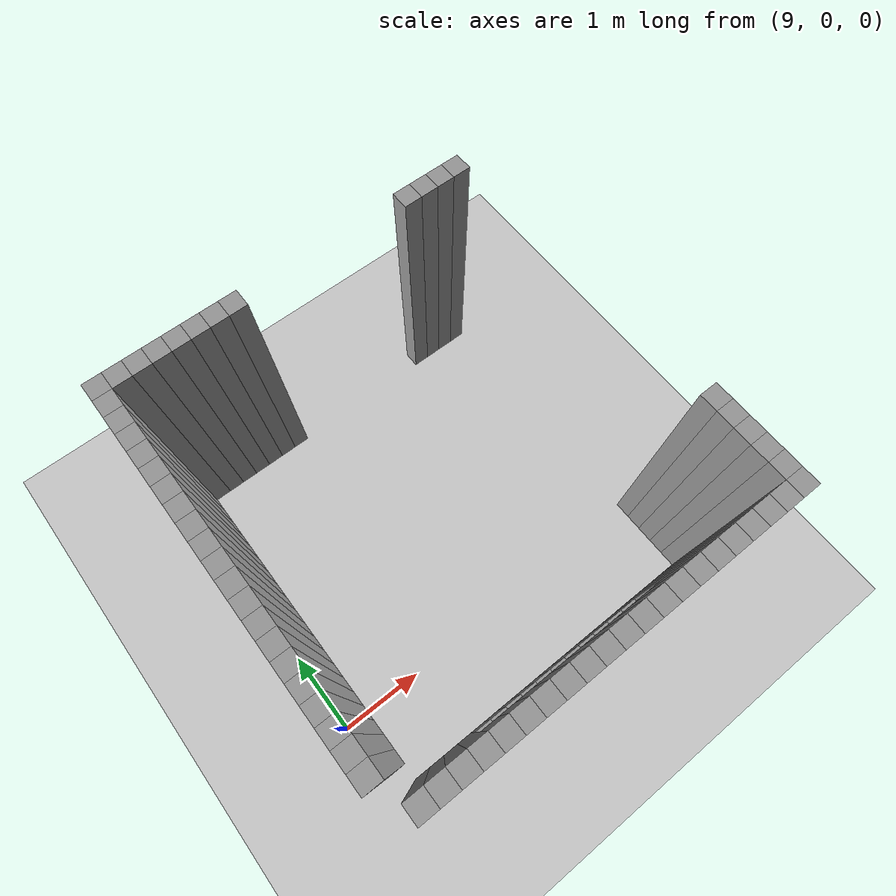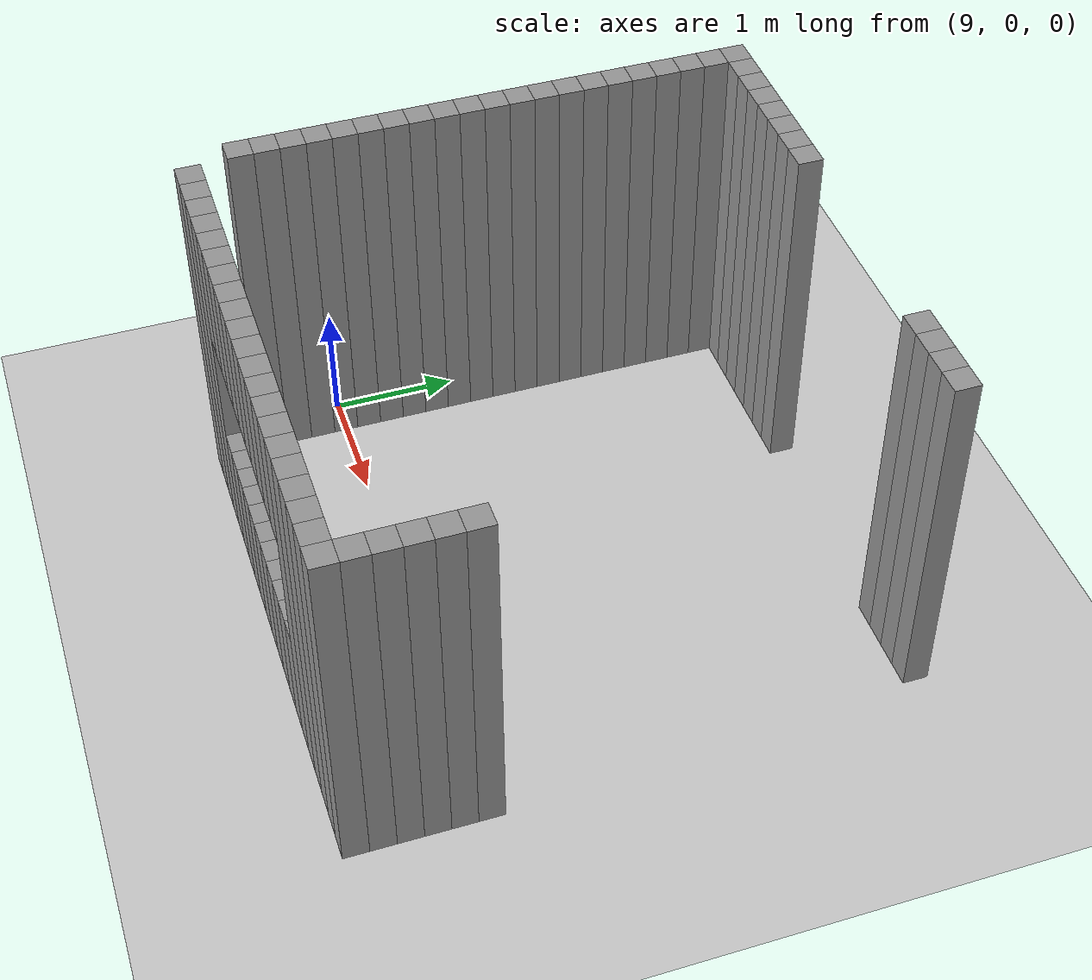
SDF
<sdf version="1.7">
 <world name="default">
  <model name="ground_plane">
   <static>1</static>
   <link name="link">
    <collision name="collision">
     <geometry><plane><normal>0 0 1</normal><size>100 100</size></plane></geometry>
     <surface>
      <contact><collide_bitmask>65535</collide_bitmask></contact>
      <friction><ode><mu>100</mu><mu2>50</mu2></ode></friction>
     </surface>
    </collision>
    <visual name="visual">
     <cast_shadows>0</cast_shadows>
     <geometry><plane><normal>0 0 1</normal><size>100 100</size></plane></geometry>
     <material>
      <script><uri>file://media/materials/scripts/gazebo.material</uri><name>Gazebo/Grey</name></script>
     </material>
    </visual>
   </link>
  </model>
  <model name="05222">
   <pose>-1 -1 0 0 -0 0</pose>
   <link name="Wall_63">
    <collision name="Wall_63_Collision">
     <geometry><box><size>0.2 0.2 3</size></box></geometry>
     <pose>0 0 1.5 0 -0 0</pose>
    </collision>
    <visual name="Wall_63_Visual">
     <pose>0 0 1.5 0 -0 0</pose>
     <geometry><box><size>0.2 0.2 3</size></box></geometry>
     <material>
      <script><uri>file://media/materials/scripts/gazebo.material</uri><name>Gazebo/Grey</name></script>
      <ambient>1 1 1 1</ambient>
     </material>
     <meta><layer>0</layer></meta>
    </visual>
    <pose>10.4 0.0 0 0 -0 0</pose>
   </link>
   <link name="Wall_64">
    <collision name="Wall_64_Collision">
     <geometry><box><size>0.2 0.2 3</size></box></geometry>
     <pose>0 0 1.5 0 -0 0</pose>
    </collision>
    <visual name="Wall_64_Visual">
     <pose>0 0 1.5 0 -0 0</pose>
     <geometry><box><size>0.2 0.2 3</size></box></geometry>
     <material>
      <script><uri>file://media/materials/scripts/gazebo.material</uri><name>Gazebo/Grey</name></script>
      <ambient>1 1 1 1</ambient>
     </material>
     <meta><layer>0</layer></meta>
    </visual>
    <pose>10.600000000000001 0.0 0 0 -0 0</pose>
   </link>
   <link name="Wall_65">
    <collision name="Wall_65_Collision">
     <geometry><box><size>0.2 0.2 3</size></box></geometry>
     <pose>0 0 1.5 0 -0 0</pose>
    </collision>
    <visual name="Wall_65_Visual">
     <pose>0 0 1.5 0 -0 0</pose>
     <geometry><box><size>0.2 0.2 3</size></box></geometry>
     <material>
      <script><uri>file://media/materials/scripts/gazebo.material</uri><name>Gazebo/Grey</name></script>
      <ambient>1 1 1 1</ambient>
     </material>
     <meta><layer>0</layer></meta>
    </visual>
    <pose>10.8 0.0 0 0 -0 0</pose>
   </link>
   <link name="Wall_66">
    <collision name="Wall_66_Collision">
     <geometry><box><size>0.2 0.2 3</size></box></geometry>
     <pose>0 0 1.5 0 -0 0</pose>
    </collision>
    <visual name="Wall_66_Visual">
     <pose>0 0 1.5 0 -0 0</pose>
     <geometry><box><size>0.2 0.2 3</size></box></geometry>
     <material>
      <script><uri>file://media/materials/scripts/gazebo.material</uri><name>Gazebo/Grey</name></script>
      <ambient>1 1 1 1</ambient>
     </material>
     <meta><layer>0</layer></meta>
    </visual>
    <pose>11.0 0.0 0 0 -0 0</pose>
   </link>
   <link name="Wall_67">
    <collision name="Wall_67_Collision">
     <geometry><box><size>0.2 0.2 1.0</size></box></geometry>
     <pose>0 0 0.5 0 -0 0</pose>
    </collision>
    <visual name="Wall_67_Visual">
     <pose>0 0 0.5 0 -0 0</pose>
     <geometry><box><size>0.2 0.2 1.0</size></box></geometry>
     <material>
      <script><uri>file://media/materials/scripts/gazebo.material</uri><name>Gazebo/Grey</name></script>
      <ambient>1 1 1 1</ambient>
     </material>
     <meta><layer>0</layer></meta>
    </visual>
    <pose>11.200000000000001 0.0 0 0 -0 0</pose>
   </link>
   <link name="Wall_68">
    <collision name="Wall_68_Collision">
     <geometry><box><size>0.2 0.2 1.0</size></box></geometry>
     <pose>0 0 2.5 0 -0 0</pose>
    </collision>
    <visual name="Wall_68_Visual">
     <pose>0 0 2.5 0 -0 0</pose>
     <geometry><box><size>0.2 0.2 1.0</size></box></geometry>
     <material>
      <script><uri>file://media/materials/scripts/gazebo.material</uri><name>Gazebo/Grey</name></script>
      <ambient>1 1 1 1</ambient>
     </material>
     <meta><layer>0</layer></meta>
    </visual>
    <pose>11.200000000000001 0.0 0 0 -0 0</pose>
   </link>
   <link name="Window_67">
    <collision name="Window_67_Collision">
     <geometry><box><size>0.2 0.2 1.0</size></box></geometry>
     <pose>0 0 1.5 0 -0 0</pose>
    </collision>
    <visual name="Wall_68_Visual">
     <pose>0 0 2.5 0 -0 0</pose>
     <geometry><box><size>0.2 0.2 1.0</size></box></geometry>
     <material>
      <script><uri>file://media/materials/scripts/gazebo.material</uri><name>Gazebo/Grey</name></script>
      <ambient>1 1 1 1</ambient>
     </material>
     <meta><layer>0</layer></meta>
    </visual>
    <pose>11.200000000000001 0.0 0 0 -0 0</pose>
   </link>
   <link name="Wall_69">
    <collision name="Wall_69_Collision">
     <geometry><box><size>0.2 0.2 1.0</size></box></geometry>
     <pose>0 0 0.5 0 -0 0</pose>
    </collision>
    <visual name="Wall_69_Visual">
     <pose>0 0 0.5 0 -0 0</pose>
     <geometry><box><size>0.2 0.2 1.0</size></box></geometry>
     <material>
      <script><uri>file://media/materials/scripts/gazebo.material</uri><name>Gazebo/Grey</name></script>
      <ambient>1 1 1 1</ambient>
     </material>
     <meta><layer>0</layer></meta>
    </visual>
    <pose>11.4 0.0 0 0 -0 0</pose>
   </link>
   <link name="Wall_70">
    <collision name="Wall_70_Collision">
     <geometry><box><size>0.2 0.2 1.0</size></box></geometry>
     <pose>0 0 2.5 0 -0 0</pose>
    </collision>
    <visual name="Wall_70_Visual">
     <pose>0 0 2.5 0 -0 0</pose>
     <geometry><box><size>0.2 0.2 1.0</size></box></geometry>
     <material>
      <script><uri>file://media/materials/scripts/gazebo.material</uri><name>Gazebo/Grey</name></script>
      <ambient>1 1 1 1</ambient>
     </material>
     <meta><layer>0</layer></meta>
    </visual>
    <pose>11.4 0.0 0 0 -0 0</pose>
   </link>
   <link name="Window_69">
    <collision name="Window_69_Collision">
     <geometry><box><size>0.2 0.2 1.0</size></box></geometry>
     <pose>0 0 1.5 0 -0 0</pose>
    </collision>
    <visual name="Wall_70_Visual">
     <pose>0 0 2.5 0 -0 0</pose>
     <geometry><box><size>0.2 0.2 1.0</size></box></geometry>
     <material>
      <script><uri>file://media/materials/scripts/gazebo.material</uri><name>Gazebo/Grey</name></script>
      <ambient>1 1 1 1</ambient>
     </material>
     <meta><layer>0</layer></meta>
    </visual>
    <pose>11.4 0.0 0 0 -0 0</pose>
   </link>
   <link name="Wall_71">
    <collision name="Wall_71_Collision">
     <geometry><box><size>0.2 0.2 1.0</size></box></geometry>
     <pose>0 0 0.5 0 -0 0</pose>
    </collision>
    <visual name="Wall_71_Visual">
     <pose>0 0 0.5 0 -0 0</pose>
     <geometry><box><size>0.2 0.2 1.0</size></box></geometry>
     <material>
      <script><uri>file://media/materials/scripts/gazebo.material</uri><name>Gazebo/Grey</name></script>
      <ambient>1 1 1 1</ambient>
     </material>
     <meta><layer>0</layer></meta>
    </visual>
    <pose>11.600000000000001 0.0 0 0 -0 0</pose>
   </link>
   <link name="Wall_72">
    <collision name="Wall_72_Collision">
     <geometry><box><size>0.2 0.2 1.0</size></box></geometry>
     <pose>0 0 2.5 0 -0 0</pose>
    </collision>
    <visual name="Wall_72_Visual">
     <pose>0 0 2.5 0 -0 0</pose>
     <geometry><box><size>0.2 0.2 1.0</size></box></geometry>
     <material>
      <script><uri>file://media/materials/scripts/gazebo.material</uri><name>Gazebo/Grey</name></script>
      <ambient>1 1 1 1</ambient>
     </material>
     <meta><layer>0</layer></meta>
    </visual>
    <pose>11.600000000000001 0.0 0 0 -0 0</pose>
   </link>
   <link name="Window_71">
    <collision name="Window_71_Collision">
     <geometry><box><size>0.2 0.2 1.0</size></box></geometry>
     <pose>0 0 1.5 0 -0 0</pose>
    </collision>
    <visual name="Wall_72_Visual">
     <pose>0 0 2.5 0 -0 0</pose>
     <geometry><box><size>0.2 0.2 1.0</size></box></geometry>
     <material>
      <script><uri>file://media/materials/scripts/gazebo.material</uri><name>Gazebo/Grey</name></script>
      <ambient>1 1 1 1</ambient>
     </material>
     <meta><layer>0</layer></meta>
    </visual>
    <pose>11.600000000000001 0.0 0 0 -0 0</pose>
   </link>
   <link name="Wall_73">
    <collision name="Wall_73_Collision">
     <geometry><box><size>0.2 0.2 1.0</size></box></geometry>
     <pose>0 0 0.5 0 -0 0</pose>
    </collision>
    <visual name="Wall_73_Visual">
     <pose>0 0 0.5 0 -0 0</pose>
     <geometry><box><size>0.2 0.2 1.0</size></box></geometry>
     <material>
      <script><uri>file://media/materials/scripts/gazebo.material</uri><name>Gazebo/Grey</name></script>
      <ambient>1 1 1 1</ambient>
     </material>
     <meta><layer>0</layer></meta>
    </visual>
    <pose>11.8 0.0 0 0 -0 0</pose>
   </link>
   <link name="Wall_74">
    <collision name="Wall_74_Collision">
     <geometry><box><size>0.2 0.2 1.0</size></box></geometry>
     <pose>0 0 2.5 0 -0 0</pose>
    </collision>
    <visual name="Wall_74_Visual">
     <pose>0 0 2.5 0 -0 0</pose>
     <geometry><box><size>0.2 0.2 1.0</size></box></geometry>
     <material>
      <script><uri>file://media/materials/scripts/gazebo.material</uri><name>Gazebo/Grey</name></script>
      <ambient>1 1 1 1</ambient>
     </material>
     <meta><layer>0</layer></meta>
    </visual>
    <pose>11.8 0.0 0 0 -0 0</pose>
   </link>
   <link name="Window_73">
    <collision name="Window_73_Collision">
     <geometry><box><size>0.2 0.2 1.0</size></box></geometry>
     <pose>0 0 1.5 0 -0 0</pose>
    </collision>
    <visual name="Wall_74_Visual">
     <pose>0 0 2.5 0 -0 0</pose>
     <geometry><box><size>0.2 0.2 1.0</size></box></geometry>
     <material>
      <script><uri>file://media/materials/scripts/gazebo.material</uri><name>Gazebo/Grey</name></script>
      <ambient>1 1 1 1</ambient>
     </material>
     <meta><layer>0</layer></meta>
    </visual>
    <pose>11.8 0.0 0 0 -0 0</pose>
   </link>
   <link name="Wall_75">
    <collision name="Wall_75_Collision">
     <geometry><box><size>0.2 0.2 1.0</size></box></geometry>
     <pose>0 0 0.5 0 -0 0</pose>
    </collision>
    <visual name="Wall_75_Visual">
     <pose>0 0 0.5 0 -0 0</pose>
     <geometry><box><size>0.2 0.2 1.0</size></box></geometry>
     <material>
      <script><uri>file://media/materials/scripts/gazebo.material</uri><name>Gazebo/Grey</name></script>
      <ambient>1 1 1 1</ambient>
     </material>
     <meta><layer>0</layer></meta>
    </visual>
    <pose>12.0 0.0 0 0 -0 0</pose>
   </link>
   <link name="Wall_76">
    <collision name="Wall_76_Collision">
     <geometry><box><size>0.2 0.2 1.0</size></box></geometry>
     <pose>0 0 2.5 0 -0 0</pose>
    </collision>
    <visual name="Wall_76_Visual">
     <pose>0 0 2.5 0 -0 0</pose>
     <geometry><box><size>0.2 0.2 1.0</size></box></geometry>
     <material>
      <script><uri>file://media/materials/scripts/gazebo.material</uri><name>Gazebo/Grey</name></script>
      <ambient>1 1 1 1</ambient>
     </material>
     <meta><layer>0</layer></meta>
    </visual>
    <pose>12.0 0.0 0 0 -0 0</pose>
   </link>
   <link name="Window_75">
    <collision name="Window_75_Collision">
     <geometry><box><size>0.2 0.2 1.0</size></box></geometry>
     <pose>0 0 1.5 0 -0 0</pose>
    </collision>
    <visual name="Wall_76_Visual">
     <pose>0 0 2.5 0 -0 0</pose>
     <geometry><box><size>0.2 0.2 1.0</size></box></geometry>
     <material>
      <script><uri>file://media/materials/scripts/gazebo.material</uri><name>Gazebo/Grey</name></script>
      <ambient>1 1 1 1</ambient>
     </material>
     <meta><layer>0</layer></meta>
    </visual>
    <pose>12.0 0.0 0 0 -0 0</pose>
   </link>
   <link name="Wall_77">
    <collision name="Wall_77_Collision">
     <geometry><box><size>0.2 0.2 1.0</size></box></geometry>
     <pose>0 0 0.5 0 -0 0</pose>
    </collision>
    <visual name="Wall_77_Visual">
     <pose>0 0 0.5 0 -0 0</pose>
     <geometry><box><size>0.2 0.2 1.0</size></box></geometry>
     <material>
      <script><uri>file://media/materials/scripts/gazebo.material</uri><name>Gazebo/Grey</name></script>
      <ambient>1 1 1 1</ambient>
     </material>
     <meta><layer>0</layer></meta>
    </visual>
    <pose>12.200000000000001 0.0 0 0 -0 0</pose>
   </link>
   <link name="Wall_78">
    <collision name="Wall_78_Collision">
     <geometry><box><size>0.2 0.2 1.0</size></box></geometry>
     <pose>0 0 2.5 0 -0 0</pose>
    </collision>
    <visual name="Wall_78_Visual">
     <pose>0 0 2.5 0 -0 0</pose>
     <geometry><box><size>0.2 0.2 1.0</size></box></geometry>
     <material>
      <script><uri>file://media/materials/scripts/gazebo.material</uri><name>Gazebo/Grey</name></script>
      <ambient>1 1 1 1</ambient>
     </material>
     <meta><layer>0</layer></meta>
    </visual>
    <pose>12.200000000000001 0.0 0 0 -0 0</pose>
   </link>
   <link name="Window_77">
    <collision name="Window_77_Collision">
     <geometry><box><size>0.2 0.2 1.0</size></box></geometry>
     <pose>0 0 1.5 0 -0 0</pose>
    </collision>
    <visual name="Wall_78_Visual">
     <pose>0 0 2.5 0 -0 0</pose>
     <geometry><box><size>0.2 0.2 1.0</size></box></geometry>
     <material>
      <script><uri>file://media/materials/scripts/gazebo.material</uri><name>Gazebo/Grey</name></script>
      <ambient>1 1 1 1</ambient>
     </material>
     <meta><layer>0</layer></meta>
    </visual>
    <pose>12.200000000000001 0.0 0 0 -0 0</pose>
   </link>
   <link name="Wall_79">
    <collision name="Wall_79_Collision">
     <geometry><box><size>0.2 0.2 1.0</size></box></geometry>
     <pose>0 0 0.5 0 -0 0</pose>
    </collision>
    <visual name="Wall_79_Visual">
     <pose>0 0 0.5 0 -0 0</pose>
     <geometry><box><size>0.2 0.2 1.0</size></box></geometry>
     <material>
      <script><uri>file://media/materials/scripts/gazebo.material</uri><name>Gazebo/Grey</name></script>
      <ambient>1 1 1 1</ambient>
     </material>
     <meta><layer>0</layer></meta>
    </visual>
    <pose>12.4 0.0 0 0 -0 0</pose>
   </link>
   <link name="Wall_80">
    <collision name="Wall_80_Collision">
     <geometry><box><size>0.2 0.2 1.0</size></box></geometry>
     <pose>0 0 2.5 0 -0 0</pose>
    </collision>
    <visual name="Wall_80_Visual">
     <pose>0 0 2.5 0 -0 0</pose>
     <geometry><box><size>0.2 0.2 1.0</size></box></geometry>
     <material>
      <script><uri>file://media/materials/scripts/gazebo.material</uri><name>Gazebo/Grey</name></script>
      <ambient>1 1 1 1</ambient>
     </material>
     <meta><layer>0</layer></meta>
    </visual>
    <pose>12.4 0.0 0 0 -0 0</pose>
   </link>
   <link name="Window_79">
    <collision name="Window_79_Collision">
     <geometry><box><size>0.2 0.2 1.0</size></box></geometry>
     <pose>0 0 1.5 0 -0 0</pose>
    </collision>
    <visual name="Wall_80_Visual">
     <pose>0 0 2.5 0 -0 0</pose>
     <geometry><box><size>0.2 0.2 1.0</size></box></geometry>
     <material>
      <script><uri>file://media/materials/scripts/gazebo.material</uri><name>Gazebo/Grey</name></script>
      <ambient>1 1 1 1</ambient>
     </material>
     <meta><layer>0</layer></meta>
    </visual>
    <pose>12.4 0.0 0 0 -0 0</pose>
   </link>
   <link name="Wall_81">
    <collision name="Wall_81_Collision">
     <geometry><box><size>0.2 0.2 1.0</size></box></geometry>
     <pose>0 0 0.5 0 -0 0</pose>
    </collision>
    <visual name="Wall_81_Visual">
     <pose>0 0 0.5 0 -0 0</pose>
     <geometry><box><size>0.2 0.2 1.0</size></box></geometry>
     <material>
      <script><uri>file://media/materials/scripts/gazebo.material</uri><name>Gazebo/Grey</name></script>
      <ambient>1 1 1 1</ambient>
     </material>
     <meta><layer>0</layer></meta>
    </visual>
    <pose>12.600000000000001 0.0 0 0 -0 0</pose>
   </link>
   <link name="Wall_82">
    <collision name="Wall_82_Collision">
     <geometry><box><size>0.2 0.2 1.0</size></box></geometry>
     <pose>0 0 2.5 0 -0 0</pose>
    </collision>
    <visual name="Wall_82_Visual">
     <pose>0 0 2.5 0 -0 0</pose>
     <geometry><box><size>0.2 0.2 1.0</size></box></geometry>
     <material>
      <script><uri>file://media/materials/scripts/gazebo.material</uri><name>Gazebo/Grey</name></script>
      <ambient>1 1 1 1</ambient>
     </material>
     <meta><layer>0</layer></meta>
    </visual>
    <pose>12.600000000000001 0.0 0 0 -0 0</pose>
   </link>
   <link name="Window_81">
    <collision name="Window_81_Collision">
     <geometry><box><size>0.2 0.2 1.0</size></box></geometry>
     <pose>0 0 1.5 0 -0 0</pose>
    </collision>
    <visual name="Wall_82_Visual">
     <pose>0 0 2.5 0 -0 0</pose>
     <geometry><box><size>0.2 0.2 1.0</size></box></geometry>
     <material>
      <script><uri>file://media/materials/scripts/gazebo.material</uri><name>Gazebo/Grey</name></script>
      <ambient>1 1 1 1</ambient>
     </material>
     <meta><layer>0</layer></meta>
    </visual>
    <pose>12.600000000000001 0.0 0 0 -0 0</pose>
   </link>
   <link name="Wall_83">
    <collision name="Wall_83_Collision">
     <geometry><box><size>0.2 0.2 1.0</size></box></geometry>
     <pose>0 0 0.5 0 -0 0</pose>
    </collision>
    <visual name="Wall_83_Visual">
     <pose>0 0 0.5 0 -0 0</pose>
     <geometry><box><size>0.2 0.2 1.0</size></box></geometry>
     <material>
      <script><uri>file://media/materials/scripts/gazebo.material</uri><name>Gazebo/Grey</name></script>
      <ambient>1 1 1 1</ambient>
     </material>
     <meta><layer>0</layer></meta>
    </visual>
    <pose>12.8 0.0 0 0 -0 0</pose>
   </link>
   <link name="Wall_84">
    <collision name="Wall_84_Collision">
     <geometry><box><size>0.2 0.2 1.0</size></box></geometry>
     <pose>0 0 2.5 0 -0 0</pose>
    </collision>
    <visual name="Wall_84_Visual">
     <pose>0 0 2.5 0 -0 0</pose>
     <geometry><box><size>0.2 0.2 1.0</size></box></geometry>
     <material>
      <script><uri>file://media/materials/scripts/gazebo.material</uri><name>Gazebo/Grey</name></script>
      <ambient>1 1 1 1</ambient>
     </material>
     <meta><layer>0</layer></meta>
    </visual>
    <pose>12.8 0.0 0 0 -0 0</pose>
   </link>
   <link name="Window_83">
    <collision name="Window_83_Collision">
     <geometry><box><size>0.2 0.2 1.0</size></box></geometry>
     <pose>0 0 1.5 0 -0 0</pose>
    </collision>
    <visual name="Wall_84_Visual">
     <pose>0 0 2.5 0 -0 0</pose>
     <geometry><box><size>0.2 0.2 1.0</size></box></geometry>
     <material>
      <script><uri>file://media/materials/scripts/gazebo.material</uri><name>Gazebo/Grey</name></script>
      <ambient>1 1 1 1</ambient>
     </material>
     <meta><layer>0</layer></meta>
    </visual>
    <pose>12.8 0.0 0 0 -0 0</pose>
   </link>
   <link name="Wall_85">
    <collision name="Wall_85_Collision">
     <geometry><box><size>0.2 0.2 1.0</size></box></geometry>
     <pose>0 0 0.5 0 -0 0</pose>
    </collision>
    <visual name="Wall_85_Visual">
     <pose>0 0 0.5 0 -0 0</pose>
     <geometry><box><size>0.2 0.2 1.0</size></box></geometry>
     <material>
      <script><uri>file://media/materials/scripts/gazebo.material</uri><name>Gazebo/Grey</name></script>
      <ambient>1 1 1 1</ambient>
     </material>
     <meta><layer>0</layer></meta>
    </visual>
    <pose>13.0 0.0 0 0 -0 0</pose>
   </link>
   <link name="Wall_86">
    <collision name="Wall_86_Collision">
     <geometry><box><size>0.2 0.2 1.0</size></box></geometry>
     <pose>0 0 2.5 0 -0 0</pose>
    </collision>
    <visual name="Wall_86_Visual">
     <pose>0 0 2.5 0 -0 0</pose>
     <geometry><box><size>0.2 0.2 1.0</size></box></geometry>
     <material>
      <script><uri>file://media/materials/scripts/gazebo.material</uri><name>Gazebo/Grey</name></script>
      <ambient>1 1 1 1</ambient>
     </material>
     <meta><layer>0</layer></meta>
    </visual>
    <pose>13.0 0.0 0 0 -0 0</pose>
   </link>
   <link name="Window_85">
    <collision name="Window_85_Collision">
     <geometry><box><size>0.2 0.2 1.0</size></box></geometry>
     <pose>0 0 1.5 0 -0 0</pose>
    </collision>
    <visual name="Wall_86_Visual">
     <pose>0 0 2.5 0 -0 0</pose>
     <geometry><box><size>0.2 0.2 1.0</size></box></geometry>
     <material>
      <script><uri>file://media/materials/scripts/gazebo.material</uri><name>Gazebo/Grey</name></script>
      <ambient>1 1 1 1</ambient>
     </material>
     <meta><layer>0</layer></meta>
    </visual>
    <pose>13.0 0.0 0 0 -0 0</pose>
   </link>
   <link name="Wall_87">
    <collision name="Wall_87_Collision">
     <geometry><box><size>0.2 0.2 1.0</size></box></geometry>
     <pose>0 0 0.5 0 -0 0</pose>
    </collision>
    <visual name="Wall_87_Visual">
     <pose>0 0 0.5 0 -0 0</pose>
     <geometry><box><size>0.2 0.2 1.0</size></box></geometry>
     <material>
      <script><uri>file://media/materials/scripts/gazebo.material</uri><name>Gazebo/Grey</name></script>
      <ambient>1 1 1 1</ambient>
     </material>
     <meta><layer>0</layer></meta>
    </visual>
    <pose>13.200000000000001 0.0 0 0 -0 0</pose>
   </link>
   <link name="Wall_88">
    <collision name="Wall_88_Collision">
     <geometry><box><size>0.2 0.2 1.0</size></box></geometry>
     <pose>0 0 2.5 0 -0 0</pose>
    </collision>
    <visual name="Wall_88_Visual">
     <pose>0 0 2.5 0 -0 0</pose>
     <geometry><box><size>0.2 0.2 1.0</size></box></geometry>
     <material>
      <script><uri>file://media/materials/scripts/gazebo.material</uri><name>Gazebo/Grey</name></script>
      <ambient>1 1 1 1</ambient>
     </material>
     <meta><layer>0</layer></meta>
    </visual>
    <pose>13.200000000000001 0.0 0 0 -0 0</pose>
   </link>
   <link name="Window_87">
    <collision name="Window_87_Collision">
     <geometry><box><size>0.2 0.2 1.0</size></box></geometry>
     <pose>0 0 1.5 0 -0 0</pose>
    </collision>
    <visual name="Wall_88_Visual">
     <pose>0 0 2.5 0 -0 0</pose>
     <geometry><box><size>0.2 0.2 1.0</size></box></geometry>
     <material>
      <script><uri>file://media/materials/scripts/gazebo.material</uri><name>Gazebo/Grey</name></script>
      <ambient>1 1 1 1</ambient>
     </material>
     <meta><layer>0</layer></meta>
    </visual>
    <pose>13.200000000000001 0.0 0 0 -0 0</pose>
   </link>
   <link name="Wall_89">
    <collision name="Wall_89_Collision">
     <geometry><box><size>0.2 0.2 3</size></box></geometry>
     <pose>0 0 1.5 0 -0 0</pose>
    </collision>
    <visual name="Wall_89_Visual">
     <pose>0 0 1.5 0 -0 0</pose>
     <geometry><box><size>0.2 0.2 3</size></box></geometry>
     <material>
      <script><uri>file://media/materials/scripts/gazebo.material</uri><name>Gazebo/Grey</name></script>
      <ambient>1 1 1 1</ambient>
     </material>
     <meta><layer>0</layer></meta>
    </visual>
    <pose>13.4 0.0 0 0 -0 0</pose>
   </link>
   <link name="Wall_90">
    <collision name="Wall_90_Collision">
     <geometry><box><size>0.2 0.2 3</size></box></geometry>
     <pose>0 0 1.5 0 -0 0</pose>
    </collision>
    <visual name="Wall_90_Visual">
     <pose>0 0 1.5 0 -0 0</pose>
     <geometry><box><size>0.2 0.2 3</size></box></geometry>
     <material>
      <script><uri>file://media/materials/scripts/gazebo.material</uri><name>Gazebo/Grey</name></script>
      <ambient>1 1 1 1</ambient>
     </material>
     <meta><layer>0</layer></meta>
    </visual>
    <pose>13.600000000000001 0.0 0 0 -0 0</pose>
   </link>
   <link name="Wall_91">
    <collision name="Wall_91_Collision">
     <geometry><box><size>0.2 0.2 3</size></box></geometry>
     <pose>0 0 1.5 0 -0 0</pose>
    </collision>
    <visual name="Wall_91_Visual">
     <pose>0 0 1.5 0 -0 0</pose>
     <geometry><box><size>0.2 0.2 3</size></box></geometry>
     <material>
      <script><uri>file://media/materials/scripts/gazebo.material</uri><name>Gazebo/Grey</name></script>
      <ambient>1 1 1 1</ambient>
     </material>
     <meta><layer>0</layer></meta>
    </visual>
    <pose>13.8 0.0 0 0 -0 0</pose>
   </link>
   <link name="Wall_92">
    <collision name="Wall_92_Collision">
     <geometry><box><size>0.2 0.2 3</size></box></geometry>
     <pose>0 0 1.5 0 -0 0</pose>
    </collision>
    <visual name="Wall_92_Visual">
     <pose>0 0 1.5 0 -0 0</pose>
     <geometry><box><size>0.2 0.2 3</size></box></geometry>
     <material>
      <script><uri>file://media/materials/scripts/gazebo.material</uri><name>Gazebo/Grey</name></script>
      <ambient>1 1 1 1</ambient>
     </material>
     <meta><layer>0</layer></meta>
    </visual>
    <pose>14.0 0.0 0 0 -0 0</pose>
   </link>
   <link name="Wall_93">
    <collision name="Wall_93_Collision">
     <geometry><box><size>0.2 0.2 3</size></box></geometry>
     <pose>0 0 1.5 0 -0 0</pose>
    </collision>
    <visual name="Wall_93_Visual">
     <pose>0 0 1.5 0 -0 0</pose>
     <geometry><box><size>0.2 0.2 3</size></box></geometry>
     <material>
      <script><uri>file://media/materials/scripts/gazebo.material</uri><name>Gazebo/Grey</name></script>
      <ambient>1 1 1 1</ambient>
     </material>
     <meta><layer>0</layer></meta>
    </visual>
    <pose>14.200000000000001 0.0 0 0 -0 0</pose>
   </link>
   <link name="Wall_94">
    <collision name="Wall_94_Collision">
     <geometry><box><size>0.2 0.2 3</size></box></geometry>
     <pose>0 0 1.5 0 -0 0</pose>
    </collision>
    <visual name="Wall_94_Visual">
     <pose>0 0 1.5 0 -0 0</pose>
     <geometry><box><size>0.2 0.2 3</size></box></geometry>
     <material>
      <script><uri>file://media/materials/scripts/gazebo.material</uri><name>Gazebo/Grey</name></script>
      <ambient>1 1 1 1</ambient>
     </material>
     <meta><layer>0</layer></meta>
    </visual>
    <pose>14.4 0.0 0 0 -0 0</pose>
   </link>
   <link name="Wall_122">
    <collision name="Wall_122_Collision">
     <geometry><box><size>0.2 0.2 3</size></box></geometry>
     <pose>0 0 1.5 0 -0 0</pose>
    </collision>
    <visual name="Wall_122_Visual">
     <pose>0 0 1.5 0 -0 0</pose>
     <geometry><box><size>0.2 0.2 3</size></box></geometry>
     <material>
      <script><uri>file://media/materials/scripts/gazebo.material</uri><name>Gazebo/Grey</name></script>
      <ambient>1 1 1 1</ambient>
     </material>
     <meta><layer>0</layer></meta>
    </visual>
    <pose>14.4 0.2 0 0 -0 0</pose>
   </link>
   <link name="Wall_126">
    <collision name="Wall_126_Collision">
     <geometry><box><size>0.2 0.2 3</size></box></geometry>
     <pose>0 0 1.5 0 -0 0</pose>
    </collision>
    <visual name="Wall_126_Visual">
     <pose>0 0 1.5 0 -0 0</pose>
     <geometry><box><size>0.2 0.2 3</size></box></geometry>
     <material>
      <script><uri>file://media/materials/scripts/gazebo.material</uri><name>Gazebo/Grey</name></script>
      <ambient>1 1 1 1</ambient>
     </material>
     <meta><layer>0</layer></meta>
    </visual>
    <pose>10.200000000000001 0.4 0 0 -0 0</pose>
   </link>
   <link name="Wall_127">
    <collision name="Wall_127_Collision">
     <geometry><box><size>0.2 0.2 3</size></box></geometry>
     <pose>0 0 1.5 0 -0 0</pose>
    </collision>
    <visual name="Wall_127_Visual">
     <pose>0 0 1.5 0 -0 0</pose>
     <geometry><box><size>0.2 0.2 3</size></box></geometry>
     <material>
      <script><uri>file://media/materials/scripts/gazebo.material</uri><name>Gazebo/Grey</name></script>
      <ambient>1 1 1 1</ambient>
     </material>
     <meta><layer>0</layer></meta>
    </visual>
    <pose>14.4 0.4 0 0 -0 0</pose>
   </link>
   <link name="Wall_131">
    <collision name="Wall_131_Collision">
     <geometry><box><size>0.2 0.2 3</size></box></geometry>
     <pose>0 0 1.5 0 -0 0</pose>
    </collision>
    <visual name="Wall_131_Visual">
     <pose>0 0 1.5 0 -0 0</pose>
     <geometry><box><size>0.2 0.2 3</size></box></geometry>
     <material>
      <script><uri>file://media/materials/scripts/gazebo.material</uri><name>Gazebo/Grey</name></script>
      <ambient>1 1 1 1</ambient>
     </material>
     <meta><layer>0</layer></meta>
    </visual>
    <pose>10.200000000000001 0.6000000000000001 0 0 -0 0</pose>
   </link>
   <link name="Wall_132">
    <collision name="Wall_132_Collision">
     <geometry><box><size>0.2 0.2 3</size></box></geometry>
     <pose>0 0 1.5 0 -0 0</pose>
    </collision>
    <visual name="Wall_132_Visual">
     <pose>0 0 1.5 0 -0 0</pose>
     <geometry><box><size>0.2 0.2 3</size></box></geometry>
     <material>
      <script><uri>file://media/materials/scripts/gazebo.material</uri><name>Gazebo/Grey</name></script>
      <ambient>1 1 1 1</ambient>
     </material>
     <meta><layer>0</layer></meta>
    </visual>
    <pose>14.4 0.6000000000000001 0 0 -0 0</pose>
   </link>
   <link name="Wall_136">
    <collision name="Wall_136_Collision">
     <geometry><box><size>0.2 0.2 3</size></box></geometry>
     <pose>0 0 1.5 0 -0 0</pose>
    </collision>
    <visual name="Wall_136_Visual">
     <pose>0 0 1.5 0 -0 0</pose>
     <geometry><box><size>0.2 0.2 3</size></box></geometry>
     <material>
      <script><uri>file://media/materials/scripts/gazebo.material</uri><name>Gazebo/Grey</name></script>
      <ambient>1 1 1 1</ambient>
     </material>
     <meta><layer>0</layer></meta>
    </visual>
    <pose>10.200000000000001 0.8 0 0 -0 0</pose>
   </link>
   <link name="Wall_137">
    <collision name="Wall_137_Collision">
     <geometry><box><size>0.2 0.2 3</size></box></geometry>
     <pose>0 0 1.5 0 -0 0</pose>
    </collision>
    <visual name="Wall_137_Visual">
     <pose>0 0 1.5 0 -0 0</pose>
     <geometry><box><size>0.2 0.2 3</size></box></geometry>
     <material>
      <script><uri>file://media/materials/scripts/gazebo.material</uri><name>Gazebo/Grey</name></script>
      <ambient>1 1 1 1</ambient>
     </material>
     <meta><layer>0</layer></meta>
    </visual>
    <pose>14.4 0.8 0 0 -0 0</pose>
   </link>
   <link name="Wall_141">
    <collision name="Wall_141_Collision">
     <geometry><box><size>0.2 0.2 3</size></box></geometry>
     <pose>0 0 1.5 0 -0 0</pose>
    </collision>
    <visual name="Wall_141_Visual">
     <pose>0 0 1.5 0 -0 0</pose>
     <geometry><box><size>0.2 0.2 3</size></box></geometry>
     <material>
      <script><uri>file://media/materials/scripts/gazebo.material</uri><name>Gazebo/Grey</name></script>
      <ambient>1 1 1 1</ambient>
     </material>
     <meta><layer>0</layer></meta>
    </visual>
    <pose>10.200000000000001 1.0 0 0 -0 0</pose>
   </link>
   <link name="Wall_142">
    <collision name="Wall_142_Collision">
     <geometry><box><size>0.2 0.2 3</size></box></geometry>
     <pose>0 0 1.5 0 -0 0</pose>
    </collision>
    <visual name="Wall_142_Visual">
     <pose>0 0 1.5 0 -0 0</pose>
     <geometry><box><size>0.2 0.2 3</size></box></geometry>
     <material>
      <script><uri>file://media/materials/scripts/gazebo.material</uri><name>Gazebo/Grey</name></script>
      <ambient>1 1 1 1</ambient>
     </material>
     <meta><layer>0</layer></meta>
    </visual>
    <pose>14.4 1.0 0 0 -0 0</pose>
   </link>
   <link name="Wall_146">
    <collision name="Wall_146_Collision">
     <geometry><box><size>0.2 0.2 3</size></box></geometry>
     <pose>0 0 1.5 0 -0 0</pose>
    </collision>
    <visual name="Wall_146_Visual">
     <pose>0 0 1.5 0 -0 0</pose>
     <geometry><box><size>0.2 0.2 3</size></box></geometry>
     <material>
      <script><uri>file://media/materials/scripts/gazebo.material</uri><name>Gazebo/Grey</name></script>
      <ambient>1 1 1 1</ambient>
     </material>
     <meta><layer>0</layer></meta>
    </visual>
    <pose>10.200000000000001 1.2000000000000002 0 0 -0 0</pose>
   </link>
   <link name="Wall_151">
    <collision name="Wall_151_Collision">
     <geometry><box><size>0.2 0.2 3</size></box></geometry>
     <pose>0 0 1.5 0 -0 0</pose>
    </collision>
    <visual name="Wall_151_Visual">
     <pose>0 0 1.5 0 -0 0</pose>
     <geometry><box><size>0.2 0.2 3</size></box></geometry>
     <material>
      <script><uri>file://media/materials/scripts/gazebo.material</uri><name>Gazebo/Grey</name></script>
      <ambient>1 1 1 1</ambient>
     </material>
     <meta><layer>0</layer></meta>
    </visual>
    <pose>10.200000000000001 1.4000000000000001 0 0 -0 0</pose>
   </link>
   <link name="Wall_157">
    <collision name="Wall_157_Collision">
     <geometry><box><size>0.2 0.2 3</size></box></geometry>
     <pose>0 0 1.5 0 -0 0</pose>
    </collision>
    <visual name="Wall_157_Visual">
     <pose>0 0 1.5 0 -0 0</pose>
     <geometry><box><size>0.2 0.2 3</size></box></geometry>
     <material>
      <script><uri>file://media/materials/scripts/gazebo.material</uri><name>Gazebo/Grey</name></script>
      <ambient>1 1 1 1</ambient>
     </material>
     <meta><layer>0</layer></meta>
    </visual>
    <pose>10.200000000000001 1.6 0 0 -0 0</pose>
   </link>
   <link name="Wall_163">
    <collision name="Wall_163_Collision">
     <geometry><box><size>0.2 0.2 3</size></box></geometry>
     <pose>0 0 1.5 0 -0 0</pose>
    </collision>
    <visual name="Wall_163_Visual">
     <pose>0 0 1.5 0 -0 0</pose>
     <geometry><box><size>0.2 0.2 3</size></box></geometry>
     <material>
      <script><uri>file://media/materials/scripts/gazebo.material</uri><name>Gazebo/Grey</name></script>
      <ambient>1 1 1 1</ambient>
     </material>
     <meta><layer>0</layer></meta>
    </visual>
    <pose>10.200000000000001 1.8 0 0 -0 0</pose>
   </link>
   <link name="Wall_169">
    <collision name="Wall_169_Collision">
     <geometry><box><size>0.2 0.2 3</size></box></geometry>
     <pose>0 0 1.5 0 -0 0</pose>
    </collision>
    <visual name="Wall_169_Visual">
     <pose>0 0 1.5 0 -0 0</pose>
     <geometry><box><size>0.2 0.2 3</size></box></geometry>
     <material>
      <script><uri>file://media/materials/scripts/gazebo.material</uri><name>Gazebo/Grey</name></script>
      <ambient>1 1 1 1</ambient>
     </material>
     <meta><layer>0</layer></meta>
    </visual>
    <pose>10.200000000000001 2.0 0 0 -0 0</pose>
   </link>
   <link name="Wall_175">
    <collision name="Wall_175_Collision">
     <geometry><box><size>0.2 0.2 3</size></box></geometry>
     <pose>0 0 1.5 0 -0 0</pose>
    </collision>
    <visual name="Wall_175_Visual">
     <pose>0 0 1.5 0 -0 0</pose>
     <geometry><box><size>0.2 0.2 3</size></box></geometry>
     <material>
      <script><uri>file://media/materials/scripts/gazebo.material</uri><name>Gazebo/Grey</name></script>
      <ambient>1 1 1 1</ambient>
     </material>
     <meta><layer>0</layer></meta>
    </visual>
    <pose>10.200000000000001 2.2 0 0 -0 0</pose>
   </link>
   <link name="Wall_181">
    <collision name="Wall_181_Collision">
     <geometry><box><size>0.2 0.2 3</size></box></geometry>
     <pose>0 0 1.5 0 -0 0</pose>
    </collision>
    <visual name="Wall_181_Visual">
     <pose>0 0 1.5 0 -0 0</pose>
     <geometry><box><size>0.2 0.2 3</size></box></geometry>
     <material>
      <script><uri>file://media/materials/scripts/gazebo.material</uri><name>Gazebo/Grey</name></script>
      <ambient>1 1 1 1</ambient>
     </material>
     <meta><layer>0</layer></meta>
    </visual>
    <pose>10.200000000000001 2.4000000000000004 0 0 -0 0</pose>
   </link>
   <link name="Wall_187">
    <collision name="Wall_187_Collision">
     <geometry><box><size>0.2 0.2 3</size></box></geometry>
     <pose>0 0 1.5 0 -0 0</pose>
    </collision>
    <visual name="Wall_187_Visual">
     <pose>0 0 1.5 0 -0 0</pose>
     <geometry><box><size>0.2 0.2 3</size></box></geometry>
     <material>
      <script><uri>file://media/materials/scripts/gazebo.material</uri><name>Gazebo/Grey</name></script>
      <ambient>1 1 1 1</ambient>
     </material>
     <meta><layer>0</layer></meta>
    </visual>
    <pose>10.200000000000001 2.6 0 0 -0 0</pose>
   </link>
   <link name="Wall_193">
    <collision name="Wall_193_Collision">
     <geometry><box><size>0.2 0.2 3</size></box></geometry>
     <pose>0 0 1.5 0 -0 0</pose>
    </collision>
    <visual name="Wall_193_Visual">
     <pose>0 0 1.5 0 -0 0</pose>
     <geometry><box><size>0.2 0.2 3</size></box></geometry>
     <material>
      <script><uri>file://media/materials/scripts/gazebo.material</uri><name>Gazebo/Grey</name></script>
      <ambient>1 1 1 1</ambient>
     </material>
     <meta><layer>0</layer></meta>
    </visual>
    <pose>10.200000000000001 2.8000000000000003 0 0 -0 0</pose>
   </link>
   <link name="Wall_200">
    <collision name="Wall_200_Collision">
     <geometry><box><size>0.2 0.2 3</size></box></geometry>
     <pose>0 0 1.5 0 -0 0</pose>
    </collision>
    <visual name="Wall_200_Visual">
     <pose>0 0 1.5 0 -0 0</pose>
     <geometry><box><size>0.2 0.2 3</size></box></geometry>
     <material>
      <script><uri>file://media/materials/scripts/gazebo.material</uri><name>Gazebo/Grey</name></script>
      <ambient>1 1 1 1</ambient>
     </material>
     <meta><layer>0</layer></meta>
    </visual>
    <pose>10.200000000000001 3.0 0 0 -0 0</pose>
   </link>
   <link name="Wall_206">
    <collision name="Wall_206_Collision">
     <geometry><box><size>0.2 0.2 3</size></box></geometry>
     <pose>0 0 1.5 0 -0 0</pose>
    </collision>
    <visual name="Wall_206_Visual">
     <pose>0 0 1.5 0 -0 0</pose>
     <geometry><box><size>0.2 0.2 3</size></box></geometry>
     <material>
      <script><uri>file://media/materials/scripts/gazebo.material</uri><name>Gazebo/Grey</name></script>
      <ambient>1 1 1 1</ambient>
     </material>
     <meta><layer>0</layer></meta>
    </visual>
    <pose>10.200000000000001 3.2 0 0 -0 0</pose>
   </link>
   <link name="Wall_212">
    <collision name="Wall_212_Collision">
     <geometry><box><size>0.2 0.2 3</size></box></geometry>
     <pose>0 0 1.5 0 -0 0</pose>
    </collision>
    <visual name="Wall_212_Visual">
     <pose>0 0 1.5 0 -0 0</pose>
     <geometry><box><size>0.2 0.2 3</size></box></geometry>
     <material>
      <script><uri>file://media/materials/scripts/gazebo.material</uri><name>Gazebo/Grey</name></script>
      <ambient>1 1 1 1</ambient>
     </material>
     <meta><layer>0</layer></meta>
    </visual>
    <pose>10.200000000000001 3.4000000000000004 0 0 -0 0</pose>
   </link>
   <link name="Wall_218">
    <collision name="Wall_218_Collision">
     <geometry><box><size>0.2 0.2 3</size></box></geometry>
     <pose>0 0 1.5 0 -0 0</pose>
    </collision>
    <visual name="Wall_218_Visual">
     <pose>0 0 1.5 0 -0 0</pose>
     <geometry><box><size>0.2 0.2 3</size></box></geometry>
     <material>
      <script><uri>file://media/materials/scripts/gazebo.material</uri><name>Gazebo/Grey</name></script>
      <ambient>1 1 1 1</ambient>
     </material>
     <meta><layer>0</layer></meta>
    </visual>
    <pose>10.200000000000001 3.6 0 0 -0 0</pose>
   </link>
   <link name="Wall_224">
    <collision name="Wall_224_Collision">
     <geometry><box><size>0.2 0.2 3</size></box></geometry>
     <pose>0 0 1.5 0 -0 0</pose>
    </collision>
    <visual name="Wall_224_Visual">
     <pose>0 0 1.5 0 -0 0</pose>
     <geometry><box><size>0.2 0.2 3</size></box></geometry>
     <material>
      <script><uri>file://media/materials/scripts/gazebo.material</uri><name>Gazebo/Grey</name></script>
      <ambient>1 1 1 1</ambient>
     </material>
     <meta><layer>0</layer></meta>
    </visual>
    <pose>10.200000000000001 3.8000000000000003 0 0 -0 0</pose>
   </link>
   <link name="Wall_230">
    <collision name="Wall_230_Collision">
     <geometry><box><size>0.2 0.2 3</size></box></geometry>
     <pose>0 0 1.5 0 -0 0</pose>
    </collision>
    <visual name="Wall_230_Visual">
     <pose>0 0 1.5 0 -0 0</pose>
     <geometry><box><size>0.2 0.2 3</size></box></geometry>
     <material>
      <script><uri>file://media/materials/scripts/gazebo.material</uri><name>Gazebo/Grey</name></script>
      <ambient>1 1 1 1</ambient>
     </material>
     <meta><layer>0</layer></meta>
    </visual>
    <pose>10.200000000000001 4.0 0 0 -0 0</pose>
   </link>
   <link name="Wall_235">
    <collision name="Wall_235_Collision">
     <geometry><box><size>0.2 0.2 3</size></box></geometry>
     <pose>0 0 1.5 0 -0 0</pose>
    </collision>
    <visual name="Wall_235_Visual">
     <pose>0 0 1.5 0 -0 0</pose>
     <geometry><box><size>0.2 0.2 3</size></box></geometry>
     <material>
      <script><uri>file://media/materials/scripts/gazebo.material</uri><name>Gazebo/Grey</name></script>
      <ambient>1 1 1 1</ambient>
     </material>
     <meta><layer>0</layer></meta>
    </visual>
    <pose>10.200000000000001 4.2 0 0 -0 0</pose>
   </link>
   <link name="Wall_272">
    <collision name="Wall_272_Collision">
     <geometry><box><size>0.2 0.2 3</size></box></geometry>
     <pose>0 0 1.5 0 -0 0</pose>
    </collision>
    <visual name="Wall_272_Visual">
     <pose>0 0 1.5 0 -0 0</pose>
     <geometry><box><size>0.2 0.2 3</size></box></geometry>
     <material>
      <script><uri>file://media/materials/scripts/gazebo.material</uri><name>Gazebo/Grey</name></script>
      <ambient>1 1 1 1</ambient>
     </material>
     <meta><layer>0</layer></meta>
    </visual>
    <pose>10.200000000000001 4.4 0 0 -0 0</pose>
   </link>
   <link name="Wall_273">
    <collision name="Wall_273_Collision">
     <geometry><box><size>0.2 0.2 3</size></box></geometry>
     <pose>0 0 1.5 0 -0 0</pose>
    </collision>
    <visual name="Wall_273_Visual">
     <pose>0 0 1.5 0 -0 0</pose>
     <geometry><box><size>0.2 0.2 3</size></box></geometry>
     <material>
      <script><uri>file://media/materials/scripts/gazebo.material</uri><name>Gazebo/Grey</name></script>
      <ambient>1 1 1 1</ambient>
     </material>
     <meta><layer>0</layer></meta>
    </visual>
    <pose>10.4 4.4 0 0 -0 0</pose>
   </link>
   <link name="Wall_274">
    <collision name="Wall_274_Collision">
     <geometry><box><size>0.2 0.2 3</size></box></geometry>
     <pose>0 0 1.5 0 -0 0</pose>
    </collision>
    <visual name="Wall_274_Visual">
     <pose>0 0 1.5 0 -0 0</pose>
     <geometry><box><size>0.2 0.2 3</size></box></geometry>
     <material>
      <script><uri>file://media/materials/scripts/gazebo.material</uri><name>Gazebo/Grey</name></script>
      <ambient>1 1 1 1</ambient>
     </material>
     <meta><layer>0</layer></meta>
    </visual>
    <pose>10.600000000000001 4.4 0 0 -0 0</pose>
   </link>
   <link name="Wall_275">
    <collision name="Wall_275_Collision">
     <geometry><box><size>0.2 0.2 3</size></box></geometry>
     <pose>0 0 1.5 0 -0 0</pose>
    </collision>
    <visual name="Wall_275_Visual">
     <pose>0 0 1.5 0 -0 0</pose>
     <geometry><box><size>0.2 0.2 3</size></box></geometry>
     <material>
      <script><uri>file://media/materials/scripts/gazebo.material</uri><name>Gazebo/Grey</name></script>
      <ambient>1 1 1 1</ambient>
     </material>
     <meta><layer>0</layer></meta>
    </visual>
    <pose>10.8 4.4 0 0 -0 0</pose>
   </link>
   <link name="Wall_276">
    <collision name="Wall_276_Collision">
     <geometry><box><size>0.2 0.2 3</size></box></geometry>
     <pose>0 0 1.5 0 -0 0</pose>
    </collision>
    <visual name="Wall_276_Visual">
     <pose>0 0 1.5 0 -0 0</pose>
     <geometry><box><size>0.2 0.2 3</size></box></geometry>
     <material>
      <script><uri>file://media/materials/scripts/gazebo.material</uri><name>Gazebo/Grey</name></script>
      <ambient>1 1 1 1</ambient>
     </material>
     <meta><layer>0</layer></meta>
    </visual>
    <pose>11.0 4.4 0 0 -0 0</pose>
   </link>
   <link name="Wall_277">
    <collision name="Wall_277_Collision">
     <geometry><box><size>0.2 0.2 3</size></box></geometry>
     <pose>0 0 1.5 0 -0 0</pose>
    </collision>
    <visual name="Wall_277_Visual">
     <pose>0 0 1.5 0 -0 0</pose>
     <geometry><box><size>0.2 0.2 3</size></box></geometry>
     <material>
      <script><uri>file://media/materials/scripts/gazebo.material</uri><name>Gazebo/Grey</name></script>
      <ambient>1 1 1 1</ambient>
     </material>
     <meta><layer>0</layer></meta>
    </visual>
    <pose>11.200000000000001 4.4 0 0 -0 0</pose>
   </link>
   <link name="Wall_278">
    <collision name="Wall_278_Collision">
     <geometry><box><size>0.2 0.2 3</size></box></geometry>
     <pose>0 0 1.5 0 -0 0</pose>
    </collision>
    <visual name="Wall_278_Visual">
     <pose>0 0 1.5 0 -0 0</pose>
     <geometry><box><size>0.2 0.2 3</size></box></geometry>
     <material>
      <script><uri>file://media/materials/scripts/gazebo.material</uri><name>Gazebo/Grey</name></script>
      <ambient>1 1 1 1</ambient>
     </material>
     <meta><layer>0</layer></meta>
    </visual>
    <pose>11.4 4.4 0 0 -0 0</pose>
   </link>
   <link name="Wall_279">
    <collision name="Wall_279_Collision">
     <geometry><box><size>0.2 0.2 3</size></box></geometry>
     <pose>0 0 1.5 0 -0 0</pose>
    </collision>
    <visual name="Wall_279_Visual">
     <pose>0 0 1.5 0 -0 0</pose>
     <geometry><box><size>0.2 0.2 3</size></box></geometry>
     <material>
      <script><uri>file://media/materials/scripts/gazebo.material</uri><name>Gazebo/Grey</name></script>
      <ambient>1 1 1 1</ambient>
     </material>
     <meta><layer>0</layer></meta>
    </visual>
    <pose>11.600000000000001 4.4 0 0 -0 0</pose>
   </link>
   <link name="Wall_280">
    <collision name="Wall_280_Collision">
     <geometry><box><size>0.2 0.2 3</size></box></geometry>
     <pose>0 0 1.5 0 -0 0</pose>
    </collision>
    <visual name="Wall_280_Visual">
     <pose>0 0 1.5 0 -0 0</pose>
     <geometry><box><size>0.2 0.2 3</size></box></geometry>
     <material>
      <script><uri>file://media/materials/scripts/gazebo.material</uri><name>Gazebo/Grey</name></script>
      <ambient>1 1 1 1</ambient>
     </material>
     <meta><layer>0</layer></meta>
    </visual>
    <pose>13.600000000000001 4.4 0 0 -0 0</pose>
   </link>
   <link name="Wall_281">
    <collision name="Wall_281_Collision">
     <geometry><box><size>0.2 0.2 3</size></box></geometry>
     <pose>0 0 1.5 0 -0 0</pose>
    </collision>
    <visual name="Wall_281_Visual">
     <pose>0 0 1.5 0 -0 0</pose>
     <geometry><box><size>0.2 0.2 3</size></box></geometry>
     <material>
      <script><uri>file://media/materials/scripts/gazebo.material</uri><name>Gazebo/Grey</name></script>
      <ambient>1 1 1 1</ambient>
     </material>
     <meta><layer>0</layer></meta>
    </visual>
    <pose>13.8 4.4 0 0 -0 0</pose>
   </link>
   <link name="Wall_282">
    <collision name="Wall_282_Collision">
     <geometry><box><size>0.2 0.2 3</size></box></geometry>
     <pose>0 0 1.5 0 -0 0</pose>
    </collision>
    <visual name="Wall_282_Visual">
     <pose>0 0 1.5 0 -0 0</pose>
     <geometry><box><size>0.2 0.2 3</size></box></geometry>
     <material>
      <script><uri>file://media/materials/scripts/gazebo.material</uri><name>Gazebo/Grey</name></script>
      <ambient>1 1 1 1</ambient>
     </material>
     <meta><layer>0</layer></meta>
    </visual>
    <pose>14.0 4.4 0 0 -0 0</pose>
   </link>
   <link name="Wall_283">
    <collision name="Wall_283_Collision">
     <geometry><box><size>0.2 0.2 3</size></box></geometry>
     <pose>0 0 1.5 0 -0 0</pose>
    </collision>
    <visual name="Wall_283_Visual">
     <pose>0 0 1.5 0 -0 0</pose>
     <geometry><box><size>0.2 0.2 3</size></box></geometry>
     <material>
      <script><uri>file://media/materials/scripts/gazebo.material</uri><name>Gazebo/Grey</name></script>
      <ambient>1 1 1 1</ambient>
     </material>
     <meta><layer>0</layer></meta>
    </visual>
    <pose>14.200000000000001 4.4 0 0 -0 0</pose>
   </link>
   <static>1</static>
  </model>
 </world>
</sdf>
